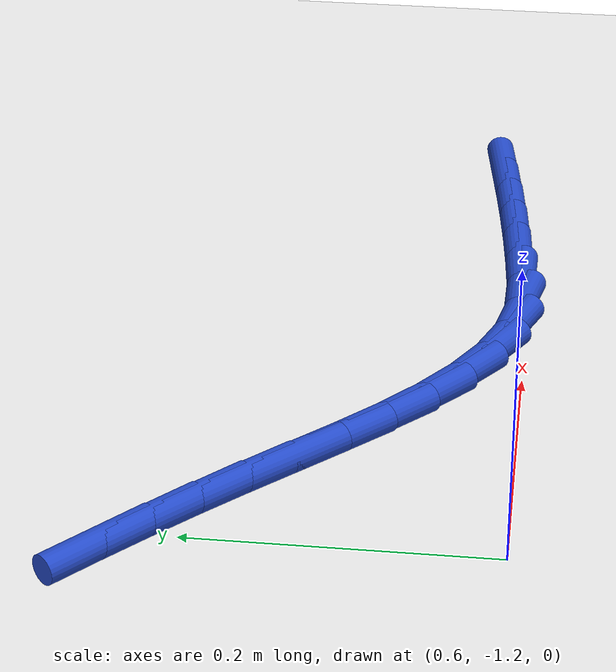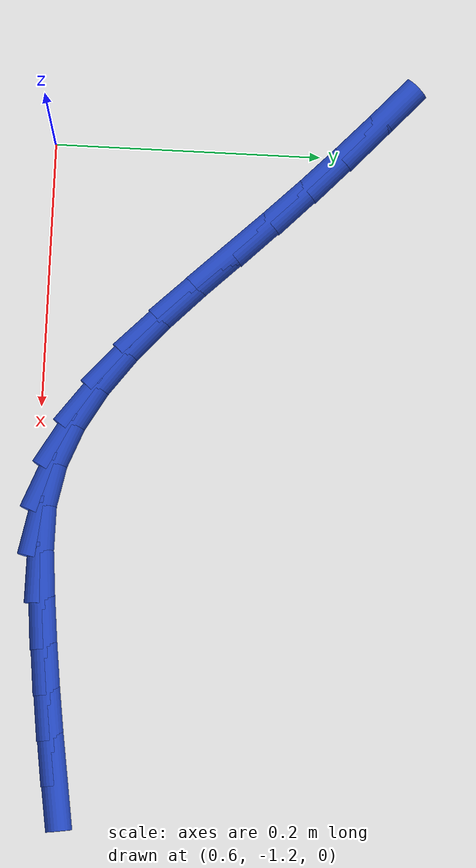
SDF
<sdf version="1.6">
 <world name="default">
  <model name="ground_plane">
   <static>1</static>
   <link name="link">
    <collision name="collision">
     <geometry><plane><normal>0 0 1</normal><size>100 100</size></plane></geometry>
     <surface><friction><ode><mu>100</mu><mu2>50</mu2></ode></friction></surface>
    </collision>
    <visual name="visual">
     <cast_shadows>0</cast_shadows>
     <geometry><plane><normal>0 0 1</normal><size>100 100</size></plane></geometry>
     <material>
      <script><uri>file://media/materials/scripts/gazebo.material</uri><name>Gazebo/WhiteGlow</name></script>
     </material>
    </visual>
   </link>
  </model>
  <model name="line">
   <link name="link_159">
    <pose>1.0784881329529203 -1.1750304536046885 0.01 0 1.57 0.14412601578479095</pose>
    <collision name="collision">
     <geometry><cylinder><radius>0.01</radius><length>0.08</length></cylinder></geometry>
    </collision>
    <visual name="visual">
     <material>
      <script><name>Gazebo/Blue</name><uri>file://media/materials/scripts/gazebo.material</uri></script>
     </material>
     <geometry><cylinder><radius>0.01</radius><length>0.08</length></cylinder></geometry>
    </visual>
   </link>
   <link name="link_160">
    <pose>1.0452419246835727 -1.1798555529845292 0.01 0 1.57 0.13074522249185694</pose>
    <collision name="collision">
     <geometry><cylinder><radius>0.01</radius><length>0.08</length></cylinder></geometry>
    </collision>
    <visual name="visual">
     <material>
      <script><name>Gazebo/Blue</name><uri>file://media/materials/scripts/gazebo.material</uri></script>
     </material>
     <geometry><cylinder><radius>0.01</radius><length>0.08</length></cylinder></geometry>
    </visual>
   </link>
   <link name="link_161">
    <pose>1.011813990112734 -1.1842511710081252 0.01 0 1.57 0.11589315172163374</pose>
    <collision name="collision">
     <geometry><cylinder><radius>0.01</radius><length>0.08</length></cylinder></geometry>
    </collision>
    <visual name="visual">
     <material>
      <script><name>Gazebo/Blue</name><uri>file://media/materials/scripts/gazebo.material</uri></script>
     </material>
     <geometry><cylinder><radius>0.01</radius><length>0.08</length></cylinder></geometry>
    </visual>
   </link>
   <link name="link_162">
    <pose>0.9781255139465941 -1.188173008788636 0.01 0 1.57 0.09969703177227658</pose>
    <collision name="collision">
     <geometry><cylinder><radius>0.01</radius><length>0.08</length></cylinder></geometry>
    </collision>
    <visual name="visual">
     <material>
      <script><name>Gazebo/Blue</name><uri>file://media/materials/scripts/gazebo.material</uri></script>
     </material>
     <geometry><cylinder><radius>0.01</radius><length>0.08</length></cylinder></geometry>
    </visual>
   </link>
   <link name="link_163">
    <pose>0.9440976808913429 -1.1915767674392237 0.01 0 1.57 0.07995008379320924</pose>
    <collision name="collision">
     <geometry><cylinder><radius>0.01</radius><length>0.08</length></cylinder></geometry>
    </collision>
    <visual name="visual">
     <material>
      <script><name>Gazebo/Blue</name><uri>file://media/materials/scripts/gazebo.material</uri></script>
     </material>
     <geometry><cylinder><radius>0.01</radius><length>0.08</length></cylinder></geometry>
    </visual>
   </link>
   <link name="link_164">
    <pose>0.9096875542704553 -1.1943337366476248 0.01 0 1.57 -0.0091656776922567</pose>
    <collision name="collision">
     <geometry><cylinder><radius>0.01</radius><length>0.08</length></cylinder></geometry>
    </collision>
    <visual name="visual">
     <material>
      <script><name>Gazebo/Blue</name><uri>file://media/materials/scripts/gazebo.material</uri></script>
     </material>
     <geometry><cylinder><radius>0.01</radius><length>0.08</length></cylinder></geometry>
    </visual>
   </link>
   <link name="link_165">
    <pose>0.8758267569453847 -1.1940233708016499 0.01 0 1.57 -0.20058529039477943</pose>
    <collision name="collision">
     <geometry><cylinder><radius>0.01</radius><length>0.08</length></cylinder></geometry>
    </collision>
    <visual name="visual">
     <material>
      <script><name>Gazebo/Blue</name><uri>file://media/materials/scripts/gazebo.material</uri></script>
     </material>
     <geometry><cylinder><radius>0.01</radius><length>0.08</length></cylinder></geometry>
    </visual>
   </link>
   <link name="link_166">
    <pose>0.8438129669511976 -1.1875143446707122 0.01 0 1.57 -0.3842751887859137</pose>
    <collision name="collision">
     <geometry><cylinder><radius>0.01</radius><length>0.08</length></cylinder></geometry>
    </collision>
    <visual name="visual">
     <material>
      <script><name>Gazebo/Blue</name><uri>file://media/materials/scripts/gazebo.material</uri></script>
     </material>
     <geometry><cylinder><radius>0.01</radius><length>0.08</length></cylinder></geometry>
    </visual>
   </link>
   <link name="link_167">
    <pose>0.8135453187979313 -1.1752747602407827 0.01 0 1.57 -0.5343512943482486</pose>
    <collision name="collision">
     <geometry><cylinder><radius>0.01</radius><length>0.08</length></cylinder></geometry>
    </collision>
    <visual name="visual">
     <material>
      <script><name>Gazebo/Blue</name><uri>file://media/materials/scripts/gazebo.material</uri></script>
     </material>
     <geometry><cylinder><radius>0.01</radius><length>0.08</length></cylinder></geometry>
    </visual>
   </link>
   <link name="link_168">
    <pose>0.7847443119755773 -1.1582309845787138 0.01 0 1.57 -0.6483781052263249</pose>
    <collision name="collision">
     <geometry><cylinder><radius>0.01</radius><length>0.08</length></cylinder></geometry>
    </collision>
    <visual name="visual">
     <material>
      <script><name>Gazebo/Blue</name><uri>file://media/materials/scripts/gazebo.material</uri></script>
     </material>
     <geometry><cylinder><radius>0.01</radius><length>0.08</length></cylinder></geometry>
    </visual>
   </link>
   <link name="link_169">
    <pose>0.7571304459741264 -1.1373093847513596 0.01 0 1.57 -0.7294422254344829</pose>
    <collision name="collision">
     <geometry><cylinder><radius>0.01</radius><length>0.08</length></cylinder></geometry>
    </collision>
    <visual name="visual">
     <material>
      <script><name>Gazebo/Blue</name><uri>file://media/materials/scripts/gazebo.material</uri></script>
     </material>
     <geometry><cylinder><radius>0.01</radius><length>0.08</length></cylinder></geometry>
    </visual>
   </link>
   <link name="link_170">
    <pose>0.73042422028357 -1.113436327825574 0.01 0 1.57 -0.7819362308256742</pose>
    <collision name="collision">
     <geometry><cylinder><radius>0.01</radius><length>0.08</length></cylinder></geometry>
    </collision>
    <visual name="visual">
     <material>
      <script><name>Gazebo/Blue</name><uri>file://media/materials/scripts/gazebo.material</uri></script>
     </material>
     <geometry><cylinder><radius>0.01</radius><length>0.08</length></cylinder></geometry>
    </visual>
   </link>
   <link name="link_171">
    <pose>0.7043461343938999 -1.0875381808682103 0.01 0 1.57 -0.809431310023222</pose>
    <collision name="collision">
     <geometry><cylinder><radius>0.01</radius><length>0.08</length></cylinder></geometry>
    </collision>
    <visual name="visual">
     <material>
      <script><name>Gazebo/Blue</name><uri>file://media/materials/scripts/gazebo.material</uri></script>
     </material>
     <geometry><cylinder><radius>0.01</radius><length>0.08</length></cylinder></geometry>
    </visual>
   </link>
   <link name="link_172">
    <pose>0.6786166877951078 -1.060541310946123 0.01 0 1.57 -0.8139524166611727</pose>
    <collision name="collision">
     <geometry><cylinder><radius>0.01</radius><length>0.08</length></cylinder></geometry>
    </collision>
    <visual name="visual">
     <material>
      <script><name>Gazebo/Blue</name><uri>file://media/materials/scripts/gazebo.material</uri></script>
     </material>
     <geometry><cylinder><radius>0.01</radius><length>0.08</length></cylinder></geometry>
    </visual>
   </link>
   <link name="link_173">
    <pose>0.652956379977184 -1.0333720851261654 0.01 0 1.57 -0.7979755602309714</pose>
    <collision name="collision">
     <geometry><cylinder><radius>0.01</radius><length>0.08</length></cylinder></geometry>
    </collision>
    <visual name="visual">
     <material>
      <script><name>Gazebo/Blue</name><uri>file://media/materials/scripts/gazebo.material</uri></script>
     </material>
     <geometry><cylinder><radius>0.01</radius><length>0.08</length></cylinder></geometry>
    </visual>
   </link>
   <link name="link_174">
    <pose>0.6271141303679266 -1.006871463740489 0.01 0 1.57 -0.7772061507770787</pose>
    <collision name="collision">
     <geometry><cylinder><radius>0.01</radius><length>0.08</length></cylinder></geometry>
    </collision>
    <visual name="visual">
     <material>
      <script><name>Gazebo/Blue</name><uri>file://media/materials/scripts/gazebo.material</uri></script>
     </material>
     <geometry><cylinder><radius>0.01</radius><length>0.08</length></cylinder></geometry>
    </visual>
   </link>
   <link name="link_175">
    <pose>0.6010537560283746 -0.9812346032748162 0.01 0 1.57 -0.759112682963557</pose>
    <collision name="collision">
     <geometry><cylinder><radius>0.01</radius><length>0.08</length></cylinder></geometry>
    </collision>
    <visual name="visual">
     <material>
      <script><name>Gazebo/Blue</name><uri>file://media/materials/scripts/gazebo.material</uri></script>
     </material>
     <geometry><cylinder><radius>0.01</radius><length>0.08</length></cylinder></geometry>
    </visual>
   </link>
   <link name="link_176">
    <pose>0.574837325525559 -0.956361397770466 0.01 0 1.57 -0.7438803097546826</pose>
    <collision name="collision">
     <geometry><cylinder><radius>0.01</radius><length>0.08</length></cylinder></geometry>
    </collision>
    <visual name="visual">
     <material>
      <script><name>Gazebo/Blue</name><uri>file://media/materials/scripts/gazebo.material</uri></script>
     </material>
     <geometry><cylinder><radius>0.01</radius><length>0.08</length></cylinder></geometry>
    </visual>
   </link>
  </model>
 </world>
</sdf>
